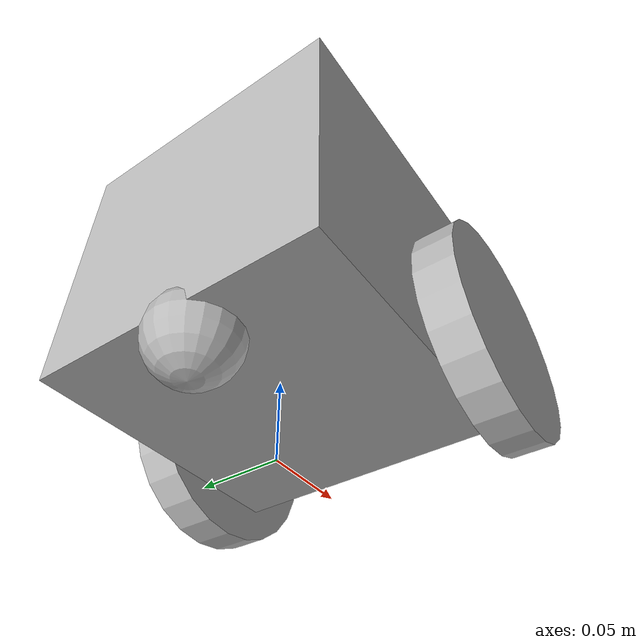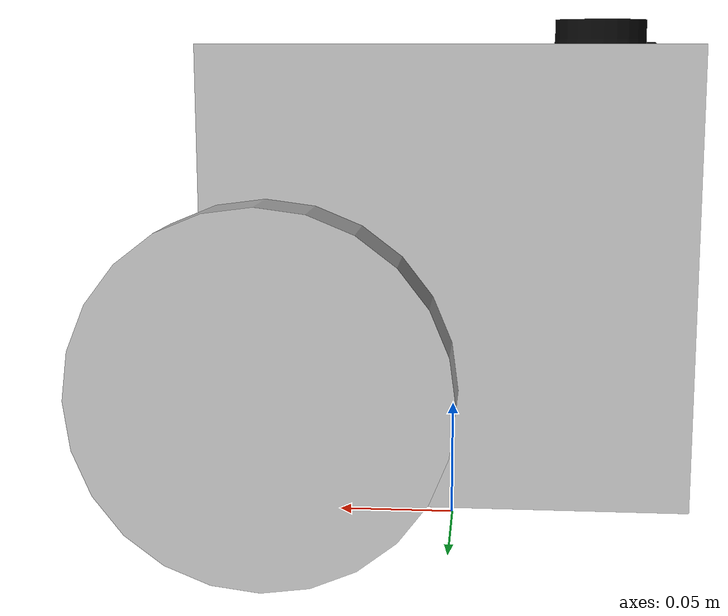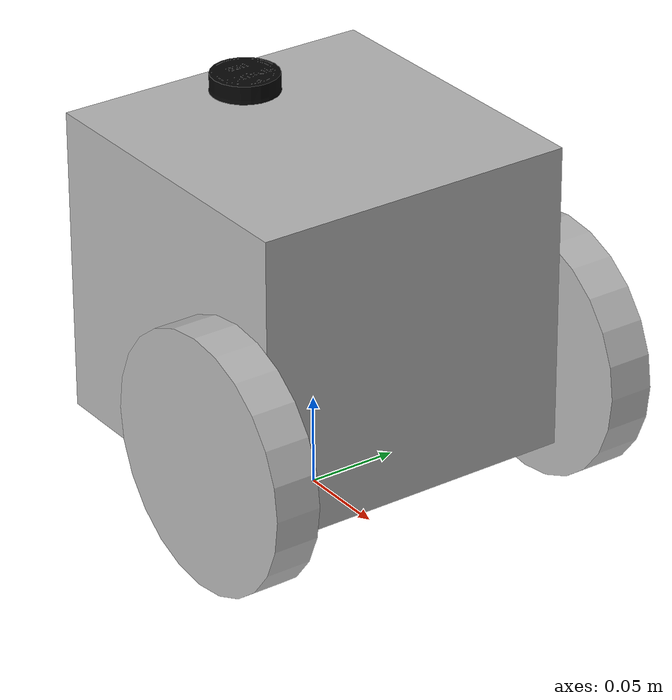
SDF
<?xml version='1.0'?>
<sdf version='1.4'>
  <model name="test_bot">
        <static>false</static> <!--Make this false to make the bot move-->

          <link name='chassis'>
            <pose>0 0 0.12 0 0 0</pose>

            <collision name='collision'>
              <geometry>
                <box>
                  <size>.18 .18 .17</size>
                </box>
              </geometry>
            </collision>

            <visual name='visual'>
              <geometry>
                <box>
                  <size>.18 .18 .17</size>
                </box>
              </geometry>
            </visual>

 <collision name='caster_collision'>
            <pose>-0.068 0 -0.085 0 0 0</pose>
            <geometry>
                <sphere>
                <radius>.027</radius>
              </sphere>
            </geometry>

            <surface>
              <friction>
                <ode>
                  <mu>0</mu>
                  <mu2>0</mu2>
                  <slip1>1.0</slip1>
                  <slip2>1.0</slip2>
                </ode>
              </friction>
            </surface>
          </collision>

          <visual name='caster_visual'>
            <pose>-0.068 0 -0.085 0 0 0</pose>
            <geometry>
              <sphere>
                <radius>.027</radius>
              </sphere>
            </geometry>
          </visual>
     </link>

<link name="left_wheel">
        <pose>0.065 0.103 0.08 0 1.5707 1.5707</pose>
        <collision name="collision">
          <geometry>
            <cylinder>
              <radius>.07</radius>
              <length>.025</length>
            </cylinder>
          </geometry>
        </collision>
        <visual name="visual">
          <geometry>
            <cylinder>
              <radius>.07</radius>
              <length>.025</length>
            </cylinder>
          </geometry>
        </visual>
      </link>

 <link name="right_wheel">
        <pose>0.065 -0.103 0.08 0 1.5707 1.5707</pose>
        <collision name="collision">
          <geometry>
            <cylinder>
              <radius>.07</radius>
              <length>.025</length>
            </cylinder>
          </geometry>
        </collision>
        <visual name="visual">
          <geometry>
            <cylinder>
              <radius>.07</radius>
              <length>.025</length>
            </cylinder>
          </geometry>
        </visual>
      </link>

<joint type="revolute" name="left_wheel_hinge">
        <pose>0 0 -0.08 0 0 0</pose>
        <child>left_wheel</child>
        <parent>chassis</parent>
        <axis>
          <xyz>0 1 0</xyz>
        </axis>
      </joint>

      <joint type="revolute" name="right_wheel_hinge">
        <pose>0 0 0.08 0 0 0</pose>
        <child>right_wheel</child>
        <parent>chassis</parent>
        <axis>
          <xyz>0 1 0</xyz>
        </axis>
      </joint>

<!--Differential drive plugin-->
 <plugin name="differential_drive_controller" filename="libgazebo_ros_diff_drive.so">
      <legacyMode>false</legacyMode>
      <alwaysOn>true</alwaysOn>
      <updateRate>20</updateRate>
      <leftJoint>left_wheel_hinge</leftJoint>
      <rightJoint>left_wheel_hinge</rightJoint>
      <wheelSeparation>0.206</wheelSeparation>
      <wheelDiameter>0.14</wheelDiameter>
      <torque>20</torque>
      <commandTopic>cmd_vel</commandTopic>
      <odometryTopic>odom</odometryTopic>
      <odometryFrame>odom</odometryFrame>
      <robotBaseFrame>chassis</robotBaseFrame>
    </plugin>

<!--definfing hokuyo-->

<model name='hokuyo'>
      <link name='link'>
        <gravity>0</gravity>
        <inertial>
          <mass>0.1</mass>
        </inertial>
        <visual name='visual'>
          <geometry>
            <mesh>
              <uri>model://hokuyo/meshes/hokuyo.dae</uri>
            </mesh>
          </geometry>
        </visual>
        <sensor name='laser' type='ray'>
          <pose frame=''>0.01 0 0.03 0 0 3.14</pose>
          <ray>
            <scan>
              <horizontal>
                <samples>8</samples>
                <resolution>1</resolution>
                <min_angle>-1.0</min_angle>
                <max_angle>1.0</max_angle>
              </horizontal>
            </scan>
            <range>
              <min>0.02</min>
              <max>1</max>
              <resolution>0.01</resolution>
            </range>
            <noise>
          <type>gaussian</type>
          <mean>0.0</mean>
          <stddev>0.01</stddev>
        	</noise>
          </ray>

           <plugin name="gazebo_ros_head_hokuyo_controller" filename="libgazebo_ros_laser.so">
          <topicName>/mybot/laser/scan</topicName>
          <frameName>odom</frameName>
        </plugin>
          <always_on>1</always_on>
          <update_rate>30</update_rate>
          <visualize>1</visualize>
        </sensor>
      </link>
      <pose frame=''>-0.06 0 0.18 0 0 0</pose>
    </model>

 <joint name='hokuyo_joint' type='fixed'>
      <parent>chassis</parent>
      <child>hokuyo::link</child>
      <pose frame=''>-0.06 0 0.18 0 0 0</pose>
      <physics>
        <ode>
          <limit>
            <cfm>0</cfm>
            <erp>0.2</erp>
          </limit>
          <suspension>
            <cfm>0</cfm>
            <erp>0.2</erp>
          </suspension>
        </ode>
      </physics>
    </joint>
    <static>0</static>
    <allow_auto_disable>1</allow_auto_disable>

  </model>
</sdf>
